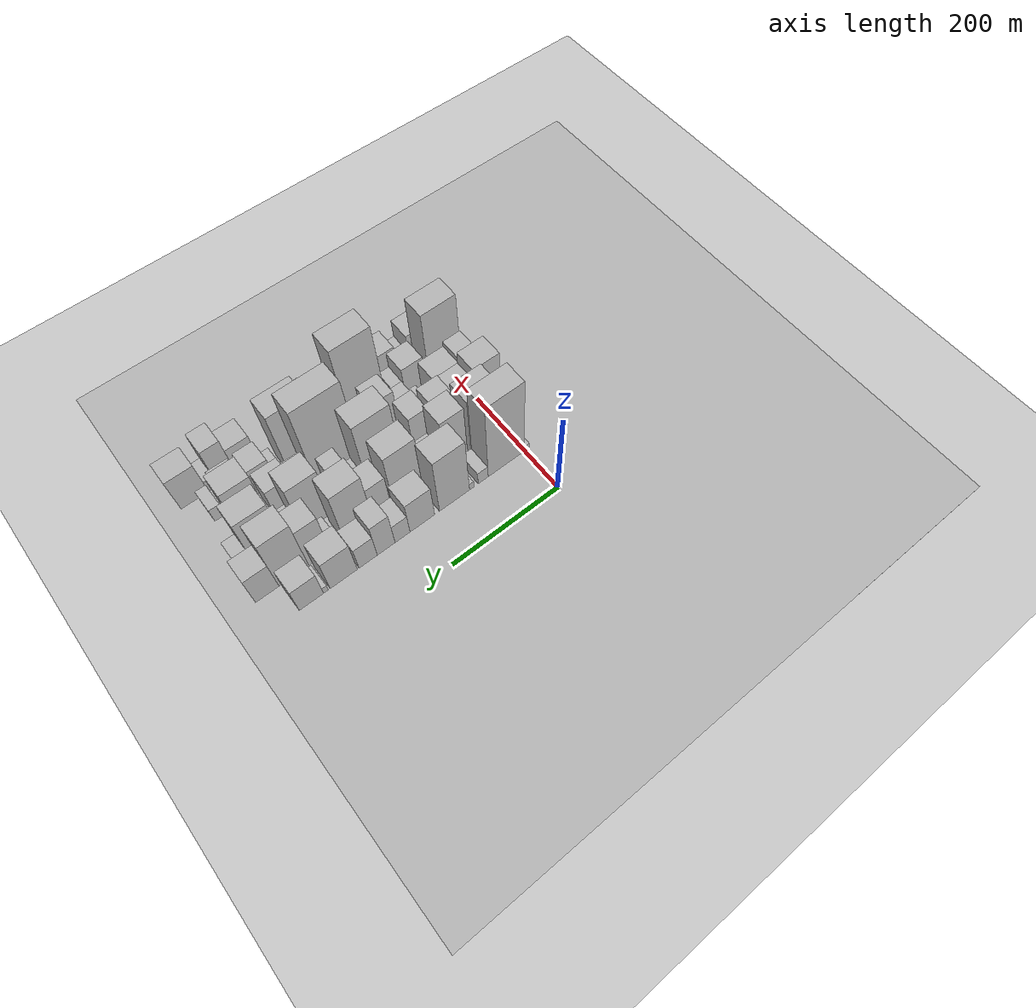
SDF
<sdf version="1.6">
 <world name="default">
  <include><name>ground_plane_1</name><uri>model://HANNAS_ground_plane</uri></include>
  <include>
   <name>ground_plane_2</name>
   <uri>model://HANNAS_ground_plane</uri>
   <pose>100 0 0  0 0 0</pose>
  </include>
  <model name="building_27">
   <static>1</static>
   <pose>100.0000 -5.7224 0 0.000000 0.000000 0.000000</pose>
   <link name="link">
    <pose>0 0 7.50 0 0 0</pose>
    <collision name="collision"><geometry><box><size>40.0000 6.3690 15.0000</size></box></geometry></collision>
    <visual name="visual">
     <cast_shadows>0</cast_shadows>
     <geometry><box><size>40.0000 6.3690 15.0000</size></box></geometry>
     <material>
      <script>
       <uri>model://HANNAS_wall/materials/scripts</uri>
       <uri>model://HANNAS_wall/materials/textures</uri>
       <name>vrc/HANNAS_wall</name>
      </script>
     </material>
    </visual>
   </link>
  </model>
  <model name="building_28">
   <static>1</static>
   <pose>100.0000 36.5928 0 0.000000 0.000000 0.000000</pose>
   <link name="link">
    <pose>0 0 100.50 0 0 0</pose>
    <collision name="collision"><geometry><box><size>40.0000 70.2614 201.0000</size></box></geometry></collision>
    <visual name="visual">
     <cast_shadows>0</cast_shadows>
     <geometry><box><size>40.0000 70.2614 201.0000</size></box></geometry>
     <material>
      <script>
       <uri>model://HANNAS_wall/materials/scripts</uri>
       <uri>model://HANNAS_wall/materials/textures</uri>
       <name>vrc/HANNAS_wall</name>
      </script>
     </material>
    </visual>
   </link>
  </model>
  <model name="building_29">
   <static>1</static>
   <pose>100.0000 81.3332 0 0.000000 0.000000 0.000000</pose>
   <link name="link">
    <pose>0 0 16.50 0 0 0</pose>
    <collision name="collision"><geometry><box><size>40.0000 19.2194 33.0000</size></box></geometry></collision>
    <visual name="visual">
     <cast_shadows>0</cast_shadows>
     <geometry><box><size>40.0000 19.2194 33.0000</size></box></geometry>
     <material>
      <script>
       <uri>model://HANNAS_wall/materials/scripts</uri>
       <uri>model://HANNAS_wall/materials/textures</uri>
       <name>vrc/HANNAS_wall</name>
      </script>
     </material>
    </visual>
   </link>
  </model>
  <model name="building_30">
   <static>1</static>
   <pose>100.0000 103.2187 0 0.000000 0.000000 0.000000</pose>
   <link name="link">
    <pose>0 0 9.00 0 0 0</pose>
    <collision name="collision"><geometry><box><size>40.0000 8.5515 18.0000</size></box></geometry></collision>
    <visual name="visual">
     <cast_shadows>0</cast_shadows>
     <geometry><box><size>40.0000 8.5515 18.0000</size></box></geometry>
     <material>
      <script>
       <uri>model://HANNAS_wall/materials/scripts</uri>
       <uri>model://HANNAS_wall/materials/textures</uri>
       <name>vrc/HANNAS_wall</name>
      </script>
     </material>
    </visual>
   </link>
  </model>
  <model name="building_31">
   <static>1</static>
   <pose>100.0000 135.7217 0 0.000000 0.000000 0.000000</pose>
   <link name="link">
    <pose>0 0 75.00 0 0 0</pose>
    <collision name="collision"><geometry><box><size>40.0000 56.4544 150.0000</size></box></geometry></collision>
    <visual name="visual">
     <cast_shadows>0</cast_shadows>
     <geometry><box><size>40.0000 56.4544 150.0000</size></box></geometry>
     <material>
      <script>
       <uri>model://HANNAS_wall/materials/scripts</uri>
       <uri>model://HANNAS_wall/materials/textures</uri>
       <name>vrc/HANNAS_wall</name>
      </script>
     </material>
    </visual>
   </link>
  </model>
  <model name="building_32">
   <static>1</static>
   <pose>100.0000 195.4311 0 0.000000 0.000000 0.000000</pose>
   <link name="link">
    <pose>0 0 43.50 0 0 0</pose>
    <collision name="collision"><geometry><box><size>40.0000 44.9646 87.0000</size></box></geometry></collision>
    <visual name="visual">
     <cast_shadows>0</cast_shadows>
     <geometry><box><size>40.0000 44.9646 87.0000</size></box></geometry>
     <material>
      <script>
       <uri>model://HANNAS_wall/materials/scripts</uri>
       <uri>model://HANNAS_wall/materials/textures</uri>
       <name>vrc/HANNAS_wall</name>
      </script>
     </material>
    </visual>
   </link>
  </model>
  <model name="building_33">
   <static>1</static>
   <pose>100.0000 231.5103 0 0.000000 0.000000 0.000000</pose>
   <link name="link">
    <pose>0 0 27.00 0 0 0</pose>
    <collision name="collision"><geometry><box><size>40.0000 27.1937 54.0000</size></box></geometry></collision>
    <visual name="visual">
     <cast_shadows>0</cast_shadows>
     <geometry><box><size>40.0000 27.1937 54.0000</size></box></geometry>
     <material>
      <script>
       <uri>model://HANNAS_wall/materials/scripts</uri>
       <uri>model://HANNAS_wall/materials/textures</uri>
       <name>vrc/HANNAS_wall</name>
      </script>
     </material>
    </visual>
   </link>
  </model>
  <model name="building_34">
   <static>1</static>
   <pose>100.0000 260.8159 0 0.000000 0.000000 0.000000</pose>
   <link name="link">
    <pose>0 0 46.50 0 0 0</pose>
    <collision name="collision"><geometry><box><size>40.0000 31.4175 93.0000</size></box></geometry></collision>
    <visual name="visual">
     <cast_shadows>0</cast_shadows>
     <geometry><box><size>40.0000 31.4175 93.0000</size></box></geometry>
     <material>
      <script>
       <uri>model://HANNAS_wall/materials/scripts</uri>
       <uri>model://HANNAS_wall/materials/textures</uri>
       <name>vrc/HANNAS_wall</name>
      </script>
     </material>
    </visual>
   </link>
  </model>
  <model name="building_35">
   <static>1</static>
   <pose>100.0000 292.6859 0 0.000000 0.000000 0.000000</pose>
   <link name="link">
    <pose>0 0 31.50 0 0 0</pose>
    <collision name="collision"><geometry><box><size>40.0000 32.3226 63.0000</size></box></geometry></collision>
    <visual name="visual">
     <cast_shadows>0</cast_shadows>
     <geometry><box><size>40.0000 32.3226 63.0000</size></box></geometry>
     <material>
      <script>
       <uri>model://HANNAS_wall/materials/scripts</uri>
       <uri>model://HANNAS_wall/materials/textures</uri>
       <name>vrc/HANNAS_wall</name>
      </script>
     </material>
    </visual>
   </link>
  </model>
  <model name="building_36">
   <static>1</static>
   <pose>100.0000 335.2974 0 0.000000 0.000000 0.000000</pose>
   <link name="link">
    <pose>0 0 43.50 0 0 0</pose>
    <collision name="collision"><geometry><box><size>40.0000 46.9004 87.0000</size></box></geometry></collision>
    <visual name="visual">
     <cast_shadows>0</cast_shadows>
     <geometry><box><size>40.0000 46.9004 87.0000</size></box></geometry>
     <material>
      <script>
       <uri>model://HANNAS_wall/materials/scripts</uri>
       <uri>model://HANNAS_wall/materials/textures</uri>
       <name>vrc/HANNAS_wall</name>
      </script>
     </material>
    </visual>
   </link>
  </model>
  <model name="building_37">
   <static>1</static>
   <pose>100.0000 365.7102 0 0.000000 0.000000 0.000000</pose>
   <link name="link">
    <pose>0 0 9.00 0 0 0</pose>
    <collision name="collision"><geometry><box><size>40.0000 7.9251 18.0000</size></box></geometry></collision>
    <visual name="visual">
     <cast_shadows>0</cast_shadows>
     <geometry><box><size>40.0000 7.9251 18.0000</size></box></geometry>
     <material>
      <script>
       <uri>model://HANNAS_wall/materials/scripts</uri>
       <uri>model://HANNAS_wall/materials/textures</uri>
       <name>vrc/HANNAS_wall</name>
      </script>
     </material>
    </visual>
   </link>
  </model>
  <model name="building_38">
   <static>1</static>
   <pose>100.0000 390.2673 0 0.000000 0.000000 0.000000</pose>
   <link name="link">
    <pose>0 0 34.50 0 0 0</pose>
    <collision name="collision"><geometry><box><size>40.0000 41.1891 69.0000</size></box></geometry></collision>
    <visual name="visual">
     <cast_shadows>0</cast_shadows>
     <geometry><box><size>40.0000 41.1891 69.0000</size></box></geometry>
     <material>
      <script>
       <uri>model://HANNAS_wall/materials/scripts</uri>
       <uri>model://HANNAS_wall/materials/textures</uri>
       <name>vrc/HANNAS_wall</name>
      </script>
     </material>
    </visual>
   </link>
  </model>
  <model name="building_74">
   <static>1</static>
   <pose>149.0000 -0.8128 0 0.000000 0.000000 0.000000</pose>
   <link name="link">
    <pose>0 0 22.50 0 0 0</pose>
    <collision name="collision"><geometry><box><size>40.0000 24.3933 45.0000</size></box></geometry></collision>
    <visual name="visual">
     <cast_shadows>0</cast_shadows>
     <geometry><box><size>40.0000 24.3933 45.0000</size></box></geometry>
     <material>
      <script>
       <uri>model://HANNAS_wall/materials/scripts</uri>
       <uri>model://HANNAS_wall/materials/textures</uri>
       <name>vrc/HANNAS_wall</name>
      </script>
     </material>
    </visual>
   </link>
  </model>
  <model name="building_75">
   <static>1</static>
   <pose>149.0000 39.4271 0 0.000000 0.000000 0.000000</pose>
   <link name="link">
    <pose>0 0 75.00 0 0 0</pose>
    <collision name="collision"><geometry><box><size>40.0000 56.0865 150.0000</size></box></geometry></collision>
    <visual name="visual">
     <cast_shadows>0</cast_shadows>
     <geometry><box><size>40.0000 56.0865 150.0000</size></box></geometry>
     <material>
      <script>
       <uri>model://HANNAS_wall/materials/scripts</uri>
       <uri>model://HANNAS_wall/materials/textures</uri>
       <name>vrc/HANNAS_wall</name>
      </script>
     </material>
    </visual>
   </link>
  </model>
  <model name="building_76">
   <static>1</static>
   <pose>149.0000 94.7992 0 0.000000 0.000000 0.000000</pose>
   <link name="link">
    <pose>0 0 70.50 0 0 0</pose>
    <collision name="collision"><geometry><box><size>40.0000 42.6575 141.0000</size></box></geometry></collision>
    <visual name="visual">
     <cast_shadows>0</cast_shadows>
     <geometry><box><size>40.0000 42.6575 141.0000</size></box></geometry>
     <material>
      <script>
       <uri>model://HANNAS_wall/materials/scripts</uri>
       <uri>model://HANNAS_wall/materials/textures</uri>
       <name>vrc/HANNAS_wall</name>
      </script>
     </material>
    </visual>
   </link>
  </model>
  <model name="building_77">
   <static>1</static>
   <pose>149.0000 132.2302 0 0.000000 0.000000 0.000000</pose>
   <link name="link">
    <pose>0 0 31.50 0 0 0</pose>
    <collision name="collision"><geometry><box><size>40.0000 32.2046 63.0000</size></box></geometry></collision>
    <visual name="visual">
     <cast_shadows>0</cast_shadows>
     <geometry><box><size>40.0000 32.2046 63.0000</size></box></geometry>
     <material>
      <script>
       <uri>model://HANNAS_wall/materials/scripts</uri>
       <uri>model://HANNAS_wall/materials/textures</uri>
       <name>vrc/HANNAS_wall</name>
      </script>
     </material>
    </visual>
   </link>
  </model>
  <model name="building_78">
   <static>1</static>
   <pose>149.0000 153.1834 0 0.000000 0.000000 0.000000</pose>
   <link name="link">
    <pose>0 0 10.50 0 0 0</pose>
    <collision name="collision"><geometry><box><size>40.0000 9.7017 21.0000</size></box></geometry></collision>
    <visual name="visual">
     <cast_shadows>0</cast_shadows>
     <geometry><box><size>40.0000 9.7017 21.0000</size></box></geometry>
     <material>
      <script>
       <uri>model://HANNAS_wall/materials/scripts</uri>
       <uri>model://HANNAS_wall/materials/textures</uri>
       <name>vrc/HANNAS_wall</name>
      </script>
     </material>
    </visual>
   </link>
  </model>
  <model name="building_79">
   <static>1</static>
   <pose>149.0000 185.0868 0 0.000000 0.000000 0.000000</pose>
   <link name="link">
    <pose>0 0 73.50 0 0 0</pose>
    <collision name="collision"><geometry><box><size>40.0000 54.1052 147.0000</size></box></geometry></collision>
    <visual name="visual">
     <cast_shadows>0</cast_shadows>
     <geometry><box><size>40.0000 54.1052 147.0000</size></box></geometry>
     <material>
      <script>
       <uri>model://HANNAS_wall/materials/scripts</uri>
       <uri>model://HANNAS_wall/materials/textures</uri>
       <name>vrc/HANNAS_wall</name>
      </script>
     </material>
    </visual>
   </link>
  </model>
  <model name="building_80">
   <static>1</static>
   <pose>149.0000 232.9649 0 0.000000 0.000000 0.000000</pose>
   <link name="link">
    <pose>0 0 49.50 0 0 0</pose>
    <collision name="collision"><geometry><box><size>40.0000 33.6509 99.0000</size></box></geometry></collision>
    <visual name="visual">
     <cast_shadows>0</cast_shadows>
     <geometry><box><size>40.0000 33.6509 99.0000</size></box></geometry>
     <material>
      <script>
       <uri>model://HANNAS_wall/materials/scripts</uri>
       <uri>model://HANNAS_wall/materials/textures</uri>
       <name>vrc/HANNAS_wall</name>
      </script>
     </material>
    </visual>
   </link>
  </model>
  <model name="building_81">
   <static>1</static>
   <pose>149.0000 275.7287 0 0.000000 0.000000 0.000000</pose>
   <link name="link">
    <pose>0 0 70.50 0 0 0</pose>
    <collision name="collision"><geometry><box><size>40.0000 51.8768 141.0000</size></box></geometry></collision>
    <visual name="visual">
     <cast_shadows>0</cast_shadows>
     <geometry><box><size>40.0000 51.8768 141.0000</size></box></geometry>
     <material>
      <script>
       <uri>model://HANNAS_wall/materials/scripts</uri>
       <uri>model://HANNAS_wall/materials/textures</uri>
       <name>vrc/HANNAS_wall</name>
      </script>
     </material>
    </visual>
   </link>
  </model>
  <model name="building_82">
   <static>1</static>
   <pose>149.0000 317.8716 0 0.000000 0.000000 0.000000</pose>
   <link name="link">
    <pose>0 0 15.00 0 0 0</pose>
    <collision name="collision"><geometry><box><size>40.0000 16.4090 30.0000</size></box></geometry></collision>
    <visual name="visual">
     <cast_shadows>0</cast_shadows>
     <geometry><box><size>40.0000 16.4090 30.0000</size></box></geometry>
     <material>
      <script>
       <uri>model://HANNAS_wall/materials/scripts</uri>
       <uri>model://HANNAS_wall/materials/textures</uri>
       <name>vrc/HANNAS_wall</name>
      </script>
     </material>
    </visual>
   </link>
  </model>
  <model name="building_83">
   <static>1</static>
   <pose>149.0000 344.7126 0 0.000000 0.000000 0.000000</pose>
   <link name="link">
    <pose>0 0 57.00 0 0 0</pose>
    <collision name="collision"><geometry><box><size>40.0000 37.2731 114.0000</size></box></geometry></collision>
    <visual name="visual">
     <cast_shadows>0</cast_shadows>
     <geometry><box><size>40.0000 37.2731 114.0000</size></box></geometry>
     <material>
      <script>
       <uri>model://HANNAS_wall/materials/scripts</uri>
       <uri>model://HANNAS_wall/materials/textures</uri>
       <name>vrc/HANNAS_wall</name>
      </script>
     </material>
    </visual>
   </link>
  </model>
  <model name="building_84">
   <static>1</static>
   <pose>149.0000 388.6370 0 0.000000 0.000000 0.000000</pose>
   <link name="link">
    <pose>0 0 70.50 0 0 0</pose>
    <collision name="collision"><geometry><box><size>40.0000 50.5756 141.0000</size></box></geometry></collision>
    <visual name="visual">
     <cast_shadows>0</cast_shadows>
     <geometry><box><size>40.0000 50.5756 141.0000</size></box></geometry>
     <material>
      <script>
       <uri>model://HANNAS_wall/materials/scripts</uri>
       <uri>model://HANNAS_wall/materials/textures</uri>
       <name>vrc/HANNAS_wall</name>
      </script>
     </material>
    </visual>
   </link>
  </model>
  <model name="building_85">
   <static>1</static>
   <pose>149.0000 433.4695 0 0.000000 0.000000 0.000000</pose>
   <link name="link">
    <pose>0 0 39.00 0 0 0</pose>
    <collision name="collision"><geometry><box><size>40.0000 39.0894 78.0000</size></box></geometry></collision>
    <visual name="visual">
     <cast_shadows>0</cast_shadows>
     <geometry><box><size>40.0000 39.0894 78.0000</size></box></geometry>
     <material>
      <script>
       <uri>model://HANNAS_wall/materials/scripts</uri>
       <uri>model://HANNAS_wall/materials/textures</uri>
       <name>vrc/HANNAS_wall</name>
      </script>
     </material>
    </visual>
   </link>
  </model>
  <model name="building_119">
   <static>1</static>
   <pose>198.0000 -5.2504 0 0.000000 0.000000 0.000000</pose>
   <link name="link">
    <pose>0 0 64.50 0 0 0</pose>
    <collision name="collision"><geometry><box><size>40.0000 49.3095 129.0000</size></box></geometry></collision>
    <visual name="visual">
     <cast_shadows>0</cast_shadows>
     <geometry><box><size>40.0000 49.3095 129.0000</size></box></geometry>
     <material>
      <script>
       <uri>model://HANNAS_wall/materials/scripts</uri>
       <uri>model://HANNAS_wall/materials/textures</uri>
       <name>vrc/HANNAS_wall</name>
      </script>
     </material>
    </visual>
   </link>
  </model>
  <model name="building_120">
   <static>1</static>
   <pose>198.0000 38.4771 0 0.000000 0.000000 0.000000</pose>
   <link name="link">
    <pose>0 0 51.00 0 0 0</pose>
    <collision name="collision"><geometry><box><size>40.0000 38.1455 102.0000</size></box></geometry></collision>
    <visual name="visual">
     <cast_shadows>0</cast_shadows>
     <geometry><box><size>40.0000 38.1455 102.0000</size></box></geometry>
     <material>
      <script>
       <uri>model://HANNAS_wall/materials/scripts</uri>
       <uri>model://HANNAS_wall/materials/textures</uri>
       <name>vrc/HANNAS_wall</name>
      </script>
     </material>
    </visual>
   </link>
  </model>
  <model name="building_121">
   <static>1</static>
   <pose>198.0000 76.6604 0 0.000000 0.000000 0.000000</pose>
   <link name="link">
    <pose>0 0 52.50 0 0 0</pose>
    <collision name="collision"><geometry><box><size>40.0000 38.2211 105.0000</size></box></geometry></collision>
    <visual name="visual">
     <cast_shadows>0</cast_shadows>
     <geometry><box><size>40.0000 38.2211 105.0000</size></box></geometry>
     <material>
      <script>
       <uri>model://HANNAS_wall/materials/scripts</uri>
       <uri>model://HANNAS_wall/materials/textures</uri>
       <name>vrc/HANNAS_wall</name>
      </script>
     </material>
    </visual>
   </link>
  </model>
  <model name="building_122">
   <static>1</static>
   <pose>198.0000 100.1140 0 0.000000 0.000000 0.000000</pose>
   <link name="link">
    <pose>0 0 10.50 0 0 0</pose>
    <collision name="collision"><geometry><box><size>40.0000 8.6861 21.0000</size></box></geometry></collision>
    <visual name="visual">
     <cast_shadows>0</cast_shadows>
     <geometry><box><size>40.0000 8.6861 21.0000</size></box></geometry>
     <material>
      <script>
       <uri>model://HANNAS_wall/materials/scripts</uri>
       <uri>model://HANNAS_wall/materials/textures</uri>
       <name>vrc/HANNAS_wall</name>
      </script>
     </material>
    </visual>
   </link>
  </model>
  <model name="building_123">
   <static>1</static>
   <pose>198.0000 121.4456 0 0.000000 0.000000 0.000000</pose>
   <link name="link">
    <pose>0 0 55.50 0 0 0</pose>
    <collision name="collision"><geometry><box><size>40.0000 33.9771 111.0000</size></box></geometry></collision>
    <visual name="visual">
     <cast_shadows>0</cast_shadows>
     <geometry><box><size>40.0000 33.9771 111.0000</size></box></geometry>
     <material>
      <script>
       <uri>model://HANNAS_wall/materials/scripts</uri>
       <uri>model://HANNAS_wall/materials/textures</uri>
       <name>vrc/HANNAS_wall</name>
      </script>
     </material>
    </visual>
   </link>
  </model>
  <model name="building_124">
   <static>1</static>
   <pose>198.0000 151.0442 0 0.000000 0.000000 0.000000</pose>
   <link name="link">
    <pose>0 0 13.50 0 0 0</pose>
    <collision name="collision"><geometry><box><size>40.0000 11.2201 27.0000</size></box></geometry></collision>
    <visual name="visual">
     <cast_shadows>0</cast_shadows>
     <geometry><box><size>40.0000 11.2201 27.0000</size></box></geometry>
     <material>
      <script>
       <uri>model://HANNAS_wall/materials/scripts</uri>
       <uri>model://HANNAS_wall/materials/textures</uri>
       <name>vrc/HANNAS_wall</name>
      </script>
     </material>
    </visual>
   </link>
  </model>
  <model name="building_125">
   <static>1</static>
   <pose>198.0000 193.1384 0 0.000000 0.000000 0.000000</pose>
   <link name="link">
    <pose>0 0 90.00 0 0 0</pose>
    <collision name="collision"><geometry><box><size>40.0000 62.9683 180.0000</size></box></geometry></collision>
    <visual name="visual">
     <cast_shadows>0</cast_shadows>
     <geometry><box><size>40.0000 62.9683 180.0000</size></box></geometry>
     <material>
      <script>
       <uri>model://HANNAS_wall/materials/scripts</uri>
       <uri>model://HANNAS_wall/materials/textures</uri>
       <name>vrc/HANNAS_wall</name>
      </script>
     </material>
    </visual>
   </link>
  </model>
  <model name="building_126">
   <static>1</static>
   <pose>198.0000 234.9714 0 0.000000 0.000000 0.000000</pose>
   <link name="link">
    <pose>0 0 19.50 0 0 0</pose>
    <collision name="collision"><geometry><box><size>40.0000 20.6977 39.0000</size></box></geometry></collision>
    <visual name="visual">
     <cast_shadows>0</cast_shadows>
     <geometry><box><size>40.0000 20.6977 39.0000</size></box></geometry>
     <material>
      <script>
       <uri>model://HANNAS_wall/materials/scripts</uri>
       <uri>model://HANNAS_wall/materials/textures</uri>
       <name>vrc/HANNAS_wall</name>
      </script>
     </material>
    </visual>
   </link>
  </model>
  <model name="building_127">
   <static>1</static>
   <pose>198.0000 259.9222 0 0.000000 0.000000 0.000000</pose>
   <link name="link">
    <pose>0 0 48.00 0 0 0</pose>
    <collision name="collision"><geometry><box><size>40.0000 29.2037 96.0000</size></box></geometry></collision>
    <visual name="visual">
     <cast_shadows>0</cast_shadows>
     <geometry><box><size>40.0000 29.2037 96.0000</size></box></geometry>
     <material>
      <script>
       <uri>model://HANNAS_wall/materials/scripts</uri>
       <uri>model://HANNAS_wall/materials/textures</uri>
       <name>vrc/HANNAS_wall</name>
      </script>
     </material>
    </visual>
   </link>
  </model>
  <model name="building_128">
   <static>1</static>
   <pose>198.0000 282.4405 0 0.000000 0.000000 0.000000</pose>
   <link name="link">
    <pose>0 0 15.00 0 0 0</pose>
    <collision name="collision"><geometry><box><size>40.0000 15.8329 30.0000</size></box></geometry></collision>
    <visual name="visual">
     <cast_shadows>0</cast_shadows>
     <geometry><box><size>40.0000 15.8329 30.0000</size></box></geometry>
     <material>
      <script>
       <uri>model://HANNAS_wall/materials/scripts</uri>
       <uri>model://HANNAS_wall/materials/textures</uri>
       <name>vrc/HANNAS_wall</name>
      </script>
     </material>
    </visual>
   </link>
  </model>
  <model name="building_129">
   <static>1</static>
   <pose>198.0000 316.2164 0 0.000000 0.000000 0.000000</pose>
   <link name="link">
    <pose>0 0 67.50 0 0 0</pose>
    <collision name="collision"><geometry><box><size>40.0000 51.7189 135.0000</size></box></geometry></collision>
    <visual name="visual">
     <cast_shadows>0</cast_shadows>
     <geometry><box><size>40.0000 51.7189 135.0000</size></box></geometry>
     <material>
      <script>
       <uri>model://HANNAS_wall/materials/scripts</uri>
       <uri>model://HANNAS_wall/materials/textures</uri>
       <name>vrc/HANNAS_wall</name>
      </script>
     </material>
    </visual>
   </link>
  </model>
  <model name="building_130">
   <static>1</static>
   <pose>198.0000 351.0483 0 0.000000 0.000000 0.000000</pose>
   <link name="link">
    <pose>0 0 16.50 0 0 0</pose>
    <collision name="collision"><geometry><box><size>40.0000 17.9449 33.0000</size></box></geometry></collision>
    <visual name="visual">
     <cast_shadows>0</cast_shadows>
     <geometry><box><size>40.0000 17.9449 33.0000</size></box></geometry>
     <material>
      <script>
       <uri>model://HANNAS_wall/materials/scripts</uri>
       <uri>model://HANNAS_wall/materials/textures</uri>
       <name>vrc/HANNAS_wall</name>
      </script>
     </material>
    </visual>
   </link>
  </model>
  <model name="building_131">
   <static>1</static>
   <pose>198.0000 396.7168 0 0.000000 0.000000 0.000000</pose>
   <link name="link">
    <pose>0 0 67.50 0 0 0</pose>
    <collision name="collision"><geometry><box><size>40.0000 53.3920 135.0000</size></box></geometry></collision>
    <visual name="visual">
     <cast_shadows>0</cast_shadows>
     <geometry><box><size>40.0000 53.3920 135.0000</size></box></geometry>
     <material>
      <script>
       <uri>model://HANNAS_wall/materials/scripts</uri>
       <uri>model://HANNAS_wall/materials/textures</uri>
       <name>vrc/HANNAS_wall</name>
      </script>
     </material>
    </visual>
   </link>
  </model>
  <model name="building_132">
   <static>1</static>
   <pose>198.0000 434.5414 0 0.000000 0.000000 0.000000</pose>
   <link name="link">
    <pose>0 0 21.00 0 0 0</pose>
    <collision name="collision"><geometry><box><size>40.0000 22.2572 42.0000</size></box></geometry></collision>
    <visual name="visual">
     <cast_shadows>0</cast_shadows>
     <geometry><box><size>40.0000 22.2572 42.0000</size></box></geometry>
     <material>
      <script>
       <uri>model://HANNAS_wall/materials/scripts</uri>
       <uri>model://HANNAS_wall/materials/textures</uri>
       <name>vrc/HANNAS_wall</name>
      </script>
     </material>
    </visual>
   </link>
  </model>
  <model name="building_170">
   <static>1</static>
   <pose>247.0000 -4.9164 0 0.000000 0.000000 0.000000</pose>
   <link name="link">
    <pose>0 0 48.00 0 0 0</pose>
    <collision name="collision"><geometry><box><size>40.0000 33.4849 96.0000</size></box></geometry></collision>
    <visual name="visual">
     <cast_shadows>0</cast_shadows>
     <geometry><box><size>40.0000 33.4849 96.0000</size></box></geometry>
     <material>
      <script>
       <uri>model://HANNAS_wall/materials/scripts</uri>
       <uri>model://HANNAS_wall/materials/textures</uri>
       <name>vrc/HANNAS_wall</name>
      </script>
     </material>
    </visual>
   </link>
  </model>
  <model name="building_171">
   <static>1</static>
   <pose>247.0000 36.1118 0 0.000000 0.000000 0.000000</pose>
   <link name="link">
    <pose>0 0 42.00 0 0 0</pose>
    <collision name="collision"><geometry><box><size>40.0000 48.5715 84.0000</size></box></geometry></collision>
    <visual name="visual">
     <cast_shadows>0</cast_shadows>
     <geometry><box><size>40.0000 48.5715 84.0000</size></box></geometry>
     <material>
      <script>
       <uri>model://HANNAS_wall/materials/scripts</uri>
       <uri>model://HANNAS_wall/materials/textures</uri>
       <name>vrc/HANNAS_wall</name>
      </script>
     </material>
    </visual>
   </link>
  </model>
  <model name="building_172">
   <static>1</static>
   <pose>247.0000 78.2502 0 0.000000 0.000000 0.000000</pose>
   <link name="link">
    <pose>0 0 15.00 0 0 0</pose>
    <collision name="collision"><geometry><box><size>40.0000 15.7053 30.0000</size></box></geometry></collision>
    <visual name="visual">
     <cast_shadows>0</cast_shadows>
     <geometry><box><size>40.0000 15.7053 30.0000</size></box></geometry>
     <material>
      <script>
       <uri>model://HANNAS_wall/materials/scripts</uri>
       <uri>model://HANNAS_wall/materials/textures</uri>
       <name>vrc/HANNAS_wall</name>
      </script>
     </material>
    </visual>
   </link>
  </model>
  <model name="building_173">
   <static>1</static>
   <pose>247.0000 111.3381 0 0.000000 0.000000 0.000000</pose>
   <link name="link">
    <pose>0 0 31.50 0 0 0</pose>
    <collision name="collision"><geometry><box><size>40.0000 36.4706 63.0000</size></box></geometry></collision>
    <visual name="visual">
     <cast_shadows>0</cast_shadows>
     <geometry><box><size>40.0000 36.4706 63.0000</size></box></geometry>
     <material>
      <script>
       <uri>model://HANNAS_wall/materials/scripts</uri>
       <uri>model://HANNAS_wall/materials/textures</uri>
       <name>vrc/HANNAS_wall</name>
      </script>
     </material>
    </visual>
   </link>
  </model>
  <model name="building_174">
   <static>1</static>
   <pose>247.0000 148.9045 0 0.000000 0.000000 0.000000</pose>
   <link name="link">
    <pose>0 0 60.00 0 0 0</pose>
    <collision name="collision"><geometry><box><size>40.0000 38.6622 120.0000</size></box></geometry></collision>
    <visual name="visual">
     <cast_shadows>0</cast_shadows>
     <geometry><box><size>40.0000 38.6622 120.0000</size></box></geometry>
     <material>
      <script>
       <uri>model://HANNAS_wall/materials/scripts</uri>
       <uri>model://HANNAS_wall/materials/textures</uri>
       <name>vrc/HANNAS_wall</name>
      </script>
     </material>
    </visual>
   </link>
  </model>
  <model name="building_175">
   <static>1</static>
   <pose>247.0000 186.9844 0 0.000000 0.000000 0.000000</pose>
   <link name="link">
    <pose>0 0 49.50 0 0 0</pose>
    <collision name="collision"><geometry><box><size>40.0000 31.4977 99.0000</size></box></geometry></collision>
    <visual name="visual">
     <cast_shadows>0</cast_shadows>
     <geometry><box><size>40.0000 31.4977 99.0000</size></box></geometry>
     <material>
      <script>
       <uri>model://HANNAS_wall/materials/scripts</uri>
       <uri>model://HANNAS_wall/materials/textures</uri>
       <name>vrc/HANNAS_wall</name>
      </script>
     </material>
    </visual>
   </link>
  </model>
  <model name="building_176">
   <static>1</static>
   <pose>247.0000 243.6855 0 0.000000 0.000000 0.000000</pose>
   <link name="link">
    <pose>0 0 109.50 0 0 0</pose>
    <collision name="collision"><geometry><box><size>40.0000 81.9045 219.0000</size></box></geometry></collision>
    <visual name="visual">
     <cast_shadows>0</cast_shadows>
     <geometry><box><size>40.0000 81.9045 219.0000</size></box></geometry>
     <material>
      <script>
       <uri>model://HANNAS_wall/materials/scripts</uri>
       <uri>model://HANNAS_wall/materials/textures</uri>
       <name>vrc/HANNAS_wall</name>
      </script>
     </material>
    </visual>
   </link>
  </model>
  <model name="building_177">
   <static>1</static>
   <pose>247.0000 299.8786 0 0.000000 0.000000 0.000000</pose>
   <link name="link">
    <pose>0 0 27.00 0 0 0</pose>
    <collision name="collision"><geometry><box><size>40.0000 30.4816 54.0000</size></box></geometry></collision>
    <visual name="visual">
     <cast_shadows>0</cast_shadows>
     <geometry><box><size>40.0000 30.4816 54.0000</size></box></geometry>
     <material>
      <script>
       <uri>model://HANNAS_wall/materials/scripts</uri>
       <uri>model://HANNAS_wall/materials/textures</uri>
       <name>vrc/HANNAS_wall</name>
      </script>
     </material>
    </visual>
   </link>
  </model>
  <model name="building_178">
   <static>1</static>
   <pose>247.0000 337.2124 0 0.000000 0.000000 0.000000</pose>
   <link name="link">
    <pose>0 0 37.50 0 0 0</pose>
    <collision name="collision"><geometry><box><size>40.0000 44.1861 75.0000</size></box></geometry></collision>
    <visual name="visual">
     <cast_shadows>0</cast_shadows>
     <geometry><box><size>40.0000 44.1861 75.0000</size></box></geometry>
     <material>
      <script>
       <uri>model://HANNAS_wall/materials/scripts</uri>
       <uri>model://HANNAS_wall/materials/textures</uri>
       <name>vrc/HANNAS_wall</name>
      </script>
     </material>
    </visual>
   </link>
  </model>
  <model name="building_179">
   <static>1</static>
   <pose>247.0000 390.4517 0 0.000000 0.000000 0.000000</pose>
   <link name="link">
    <pose>0 0 69.00 0 0 0</pose>
    <collision name="collision"><geometry><box><size>40.0000 48.2925 138.0000</size></box></geometry></collision>
    <visual name="visual">
     <cast_shadows>0</cast_shadows>
     <geometry><box><size>40.0000 48.2925 138.0000</size></box></geometry>
     <material>
      <script>
       <uri>model://HANNAS_wall/materials/scripts</uri>
       <uri>model://HANNAS_wall/materials/textures</uri>
       <name>vrc/HANNAS_wall</name>
      </script>
     </material>
    </visual>
   </link>
  </model>
  <model name="building_216">
   <static>1</static>
   <pose>296.0000 6.8372 0 0.000000 0.000000 0.000000</pose>
   <link name="link">
    <pose>0 0 87.00 0 0 0</pose>
    <collision name="collision"><geometry><box><size>40.0000 64.0710 174.0000</size></box></geometry></collision>
    <visual name="visual">
     <cast_shadows>0</cast_shadows>
     <geometry><box><size>40.0000 64.0710 174.0000</size></box></geometry>
     <material>
      <script>
       <uri>model://HANNAS_wall/materials/scripts</uri>
       <uri>model://HANNAS_wall/materials/textures</uri>
       <name>vrc/HANNAS_wall</name>
      </script>
     </material>
    </visual>
   </link>
  </model>
  <model name="building_217">
   <static>1</static>
   <pose>296.0000 65.9209 0 0.000000 0.000000 0.000000</pose>
   <link name="link">
    <pose>0 0 37.50 0 0 0</pose>
    <collision name="collision"><geometry><box><size>40.0000 40.0963 75.0000</size></box></geometry></collision>
    <visual name="visual">
     <cast_shadows>0</cast_shadows>
     <geometry><box><size>40.0000 40.0963 75.0000</size></box></geometry>
     <material>
      <script>
       <uri>model://HANNAS_wall/materials/scripts</uri>
       <uri>model://HANNAS_wall/materials/textures</uri>
       <name>vrc/HANNAS_wall</name>
      </script>
     </material>
    </visual>
   </link>
  </model>
  <model name="building_218">
   <static>1</static>
   <pose>296.0000 96.1782 0 0.000000 0.000000 0.000000</pose>
   <link name="link">
    <pose>0 0 19.50 0 0 0</pose>
    <collision name="collision"><geometry><box><size>40.0000 20.4184 39.0000</size></box></geometry></collision>
    <visual name="visual">
     <cast_shadows>0</cast_shadows>
     <geometry><box><size>40.0000 20.4184 39.0000</size></box></geometry>
     <material>
      <script>
       <uri>model://HANNAS_wall/materials/scripts</uri>
       <uri>model://HANNAS_wall/materials/textures</uri>
       <name>vrc/HANNAS_wall</name>
      </script>
     </material>
    </visual>
   </link>
  </model>
  <model name="building_219">
   <static>1</static>
   <pose>296.0000 111.6264 0 0.000000 0.000000 0.000000</pose>
   <link name="link">
    <pose>0 0 10.50 0 0 0</pose>
    <collision name="collision"><geometry><box><size>40.0000 10.4780 21.0000</size></box></geometry></collision>
    <visual name="visual">
     <cast_shadows>0</cast_shadows>
     <geometry><box><size>40.0000 10.4780 21.0000</size></box></geometry>
     <material>
      <script>
       <uri>model://HANNAS_wall/materials/scripts</uri>
       <uri>model://HANNAS_wall/materials/textures</uri>
       <name>vrc/HANNAS_wall</name>
      </script>
     </material>
    </visual>
   </link>
  </model>
  <model name="building_220">
   <static>1</static>
   <pose>296.0000 154.4420 0 0.000000 0.000000 0.000000</pose>
   <link name="link">
    <pose>0 0 109.50 0 0 0</pose>
    <collision name="collision"><geometry><box><size>40.0000 69.1531 219.0000</size></box></geometry></collision>
    <visual name="visual">
     <cast_shadows>0</cast_shadows>
     <geometry><box><size>40.0000 69.1531 219.0000</size></box></geometry>
     <material>
      <script>
       <uri>model://HANNAS_wall/materials/scripts</uri>
       <uri>model://HANNAS_wall/materials/textures</uri>
       <name>vrc/HANNAS_wall</name>
      </script>
     </material>
    </visual>
   </link>
  </model>
  <model name="building_221">
   <static>1</static>
   <pose>296.0000 211.5103 0 0.000000 0.000000 0.000000</pose>
   <link name="link">
    <pose>0 0 55.50 0 0 0</pose>
    <collision name="collision"><geometry><box><size>40.0000 38.9835 111.0000</size></box></geometry></collision>
    <visual name="visual">
     <cast_shadows>0</cast_shadows>
     <geometry><box><size>40.0000 38.9835 111.0000</size></box></geometry>
     <material>
      <script>
       <uri>model://HANNAS_wall/materials/scripts</uri>
       <uri>model://HANNAS_wall/materials/textures</uri>
       <name>vrc/HANNAS_wall</name>
      </script>
     </material>
    </visual>
   </link>
  </model>
  <model name="building_222">
   <static>1</static>
   <pose>296.0000 235.7523 0 0.000000 0.000000 0.000000</pose>
   <link name="link">
    <pose>0 0 10.50 0 0 0</pose>
    <collision name="collision"><geometry><box><size>40.0000 9.5006 21.0000</size></box></geometry></collision>
    <visual name="visual">
     <cast_shadows>0</cast_shadows>
     <geometry><box><size>40.0000 9.5006 21.0000</size></box></geometry>
     <material>
      <script>
       <uri>model://HANNAS_wall/materials/scripts</uri>
       <uri>model://HANNAS_wall/materials/textures</uri>
       <name>vrc/HANNAS_wall</name>
      </script>
     </material>
    </visual>
   </link>
  </model>
  <model name="building_223">
   <static>1</static>
   <pose>296.0000 272.5410 0 0.000000 0.000000 0.000000</pose>
   <link name="link">
    <pose>0 0 81.00 0 0 0</pose>
    <collision name="collision"><geometry><box><size>40.0000 64.0766 162.0000</size></box></geometry></collision>
    <visual name="visual">
     <cast_shadows>0</cast_shadows>
     <geometry><box><size>40.0000 64.0766 162.0000</size></box></geometry>
     <material>
      <script>
       <uri>model://HANNAS_wall/materials/scripts</uri>
       <uri>model://HANNAS_wall/materials/textures</uri>
       <name>vrc/HANNAS_wall</name>
      </script>
     </material>
    </visual>
   </link>
  </model>
  <model name="building_224">
   <static>1</static>
   <pose>296.0000 318.8262 0 0.000000 0.000000 0.000000</pose>
   <link name="link">
    <pose>0 0 15.00 0 0 0</pose>
    <collision name="collision"><geometry><box><size>40.0000 16.4939 30.0000</size></box></geometry></collision>
    <visual name="visual">
     <cast_shadows>0</cast_shadows>
     <geometry><box><size>40.0000 16.4939 30.0000</size></box></geometry>
     <material>
      <script>
       <uri>model://HANNAS_wall/materials/scripts</uri>
       <uri>model://HANNAS_wall/materials/textures</uri>
       <name>vrc/HANNAS_wall</name>
      </script>
     </material>
    </visual>
   </link>
  </model>
  <model name="building_225">
   <static>1</static>
   <pose>296.0000 344.4706 0 0.000000 0.000000 0.000000</pose>
   <link name="link">
    <pose>0 0 34.50 0 0 0</pose>
    <collision name="collision"><geometry><box><size>40.0000 34.7948 69.0000</size></box></geometry></collision>
    <visual name="visual">
     <cast_shadows>0</cast_shadows>
     <geometry><box><size>40.0000 34.7948 69.0000</size></box></geometry>
     <material>
      <script>
       <uri>model://HANNAS_wall/materials/scripts</uri>
       <uri>model://HANNAS_wall/materials/textures</uri>
       <name>vrc/HANNAS_wall</name>
      </script>
     </material>
    </visual>
   </link>
  </model>
  <model name="building_226">
   <static>1</static>
   <pose>296.0000 388.4300 0 0.000000 0.000000 0.000000</pose>
   <link name="link">
    <pose>0 0 33.00 0 0 0</pose>
    <collision name="collision"><geometry><box><size>40.0000 37.1240 66.0000</size></box></geometry></collision>
    <visual name="visual">
     <cast_shadows>0</cast_shadows>
     <geometry><box><size>40.0000 37.1240 66.0000</size></box></geometry>
     <material>
      <script>
       <uri>model://HANNAS_wall/materials/scripts</uri>
       <uri>model://HANNAS_wall/materials/textures</uri>
       <name>vrc/HANNAS_wall</name>
      </script>
     </material>
    </visual>
   </link>
  </model>
  <model name="building_227">
   <static>1</static>
   <pose>296.0000 425.1278 0 0.000000 0.000000 0.000000</pose>
   <link name="link">
    <pose>0 0 18.00 0 0 0</pose>
    <collision name="collision"><geometry><box><size>40.0000 18.2717 36.0000</size></box></geometry></collision>
    <visual name="visual">
     <cast_shadows>0</cast_shadows>
     <geometry><box><size>40.0000 18.2717 36.0000</size></box></geometry>
     <material>
      <script>
       <uri>model://HANNAS_wall/materials/scripts</uri>
       <uri>model://HANNAS_wall/materials/textures</uri>
       <name>vrc/HANNAS_wall</name>
      </script>
     </material>
    </visual>
   </link>
  </model>
  <model name="building_267">
   <static>1</static>
   <pose>345.0000 24.6200 0 0.000000 0.000000 0.000000</pose>
   <link name="link">
    <pose>0 0 36.00 0 0 0</pose>
    <collision name="collision"><geometry><box><size>40.0000 36.4842 72.0000</size></box></geometry></collision>
    <visual name="visual">
     <cast_shadows>0</cast_shadows>
     <geometry><box><size>40.0000 36.4842 72.0000</size></box></geometry>
     <material>
      <script>
       <uri>model://HANNAS_wall/materials/scripts</uri>
       <uri>model://HANNAS_wall/materials/textures</uri>
       <name>vrc/HANNAS_wall</name>
      </script>
     </material>
    </visual>
   </link>
  </model>
  <model name="building_268">
   <static>1</static>
   <pose>345.0000 51.8306 0 0.000000 0.000000 0.000000</pose>
   <link name="link">
    <pose>0 0 15.00 0 0 0</pose>
    <collision name="collision"><geometry><box><size>40.0000 17.9370 30.0000</size></box></geometry></collision>
    <visual name="visual">
     <cast_shadows>0</cast_shadows>
     <geometry><box><size>40.0000 17.9370 30.0000</size></box></geometry>
     <material>
      <script>
       <uri>model://HANNAS_wall/materials/scripts</uri>
       <uri>model://HANNAS_wall/materials/textures</uri>
       <name>vrc/HANNAS_wall</name>
      </script>
     </material>
    </visual>
   </link>
  </model>
  <model name="building_269">
   <static>1</static>
   <pose>345.0000 85.7711 0 0.000000 0.000000 0.000000</pose>
   <link name="link">
    <pose>0 0 33.00 0 0 0</pose>
    <collision name="collision"><geometry><box><size>40.0000 37.9439 66.0000</size></box></geometry></collision>
    <visual name="visual">
     <cast_shadows>0</cast_shadows>
     <geometry><box><size>40.0000 37.9439 66.0000</size></box></geometry>
     <material>
      <script>
       <uri>model://HANNAS_wall/materials/scripts</uri>
       <uri>model://HANNAS_wall/materials/textures</uri>
       <name>vrc/HANNAS_wall</name>
      </script>
     </material>
    </visual>
   </link>
  </model>
  <model name="building_270">
   <static>1</static>
   <pose>345.0000 125.9469 0 0.000000 0.000000 0.000000</pose>
   <link name="link">
    <pose>0 0 37.50 0 0 0</pose>
    <collision name="collision"><geometry><box><size>40.0000 42.4077 75.0000</size></box></geometry></collision>
    <visual name="visual">
     <cast_shadows>0</cast_shadows>
     <geometry><box><size>40.0000 42.4077 75.0000</size></box></geometry>
     <material>
      <script>
       <uri>model://HANNAS_wall/materials/scripts</uri>
       <uri>model://HANNAS_wall/materials/textures</uri>
       <name>vrc/HANNAS_wall</name>
      </script>
     </material>
    </visual>
   </link>
  </model>
  <model name="building_271">
   <static>1</static>
   <pose>345.0000 150.9322 0 0.000000 0.000000 0.000000</pose>
   <link name="link">
    <pose>0 0 9.00 0 0 0</pose>
    <collision name="collision"><geometry><box><size>40.0000 7.5628 18.0000</size></box></geometry></collision>
    <visual name="visual">
     <cast_shadows>0</cast_shadows>
     <geometry><box><size>40.0000 7.5628 18.0000</size></box></geometry>
     <material>
      <script>
       <uri>model://HANNAS_wall/materials/scripts</uri>
       <uri>model://HANNAS_wall/materials/textures</uri>
       <name>vrc/HANNAS_wall</name>
      </script>
     </material>
    </visual>
   </link>
  </model>
  <model name="building_272">
   <static>1</static>
   <pose>345.0000 169.8907 0 0.000000 0.000000 0.000000</pose>
   <link name="link">
    <pose>0 0 27.00 0 0 0</pose>
    <collision name="collision"><geometry><box><size>40.0000 30.3542 54.0000</size></box></geometry></collision>
    <visual name="visual">
     <cast_shadows>0</cast_shadows>
     <geometry><box><size>40.0000 30.3542 54.0000</size></box></geometry>
     <material>
      <script>
       <uri>model://HANNAS_wall/materials/scripts</uri>
       <uri>model://HANNAS_wall/materials/textures</uri>
       <name>vrc/HANNAS_wall</name>
      </script>
     </material>
    </visual>
   </link>
  </model>
  <model name="building_273">
   <static>1</static>
   <pose>345.0000 204.2366 0 0.000000 0.000000 0.000000</pose>
   <link name="link">
    <pose>0 0 21.00 0 0 0</pose>
    <collision name="collision"><geometry><box><size>40.0000 24.3377 42.0000</size></box></geometry></collision>
    <visual name="visual">
     <cast_shadows>0</cast_shadows>
     <geometry><box><size>40.0000 24.3377 42.0000</size></box></geometry>
     <material>
      <script>
       <uri>model://HANNAS_wall/materials/scripts</uri>
       <uri>model://HANNAS_wall/materials/textures</uri>
       <name>vrc/HANNAS_wall</name>
      </script>
     </material>
    </visual>
   </link>
  </model>
  <model name="building_274">
   <static>1</static>
   <pose>345.0000 236.9934 0 0.000000 0.000000 0.000000</pose>
   <link name="link">
    <pose>0 0 37.50 0 0 0</pose>
    <collision name="collision"><geometry><box><size>40.0000 41.1758 75.0000</size></box></geometry></collision>
    <visual name="visual">
     <cast_shadows>0</cast_shadows>
     <geometry><box><size>40.0000 41.1758 75.0000</size></box></geometry>
     <material>
      <script>
       <uri>model://HANNAS_wall/materials/scripts</uri>
       <uri>model://HANNAS_wall/materials/textures</uri>
       <name>vrc/HANNAS_wall</name>
      </script>
     </material>
    </visual>
   </link>
  </model>
  <model name="building_275">
   <static>1</static>
   <pose>345.0000 348.1456 0 0.000000 0.000000 0.000000</pose>
   <link name="link">
    <pose>0 0 36.00 0 0 0</pose>
    <collision name="collision"><geometry><box><size>40.0000 39.7095 72.0000</size></box></geometry></collision>
    <visual name="visual">
     <cast_shadows>0</cast_shadows>
     <geometry><box><size>40.0000 39.7095 72.0000</size></box></geometry>
     <material>
      <script>
       <uri>model://HANNAS_wall/materials/scripts</uri>
       <uri>model://HANNAS_wall/materials/textures</uri>
       <name>vrc/HANNAS_wall</name>
      </script>
     </material>
    </visual>
   </link>
  </model>
  <model name="building_276">
   <static>1</static>
   <pose>345.0000 384.1198 0 0.000000 0.000000 0.000000</pose>
   <link name="link">
    <pose>0 0 51.00 0 0 0</pose>
    <collision name="collision"><geometry><box><size>40.0000 32.2390 102.0000</size></box></geometry></collision>
    <visual name="visual">
     <cast_shadows>0</cast_shadows>
     <geometry><box><size>40.0000 32.2390 102.0000</size></box></geometry>
     <material>
      <script>
       <uri>model://HANNAS_wall/materials/scripts</uri>
       <uri>model://HANNAS_wall/materials/textures</uri>
       <name>vrc/HANNAS_wall</name>
      </script>
     </material>
    </visual>
   </link>
  </model>
  <model name="building_277">
   <static>1</static>
   <pose>345.0000 408.4658 0 0.000000 0.000000 0.000000</pose>
   <link name="link">
    <pose>0 0 15.00 0 0 0</pose>
    <collision name="collision"><geometry><box><size>40.0000 16.4529 30.0000</size></box></geometry></collision>
    <visual name="visual">
     <cast_shadows>0</cast_shadows>
     <geometry><box><size>40.0000 16.4529 30.0000</size></box></geometry>
     <material>
      <script>
       <uri>model://HANNAS_wall/materials/scripts</uri>
       <uri>model://HANNAS_wall/materials/textures</uri>
       <name>vrc/HANNAS_wall</name>
      </script>
     </material>
    </visual>
   </link>
  </model>
  <model name="building_278">
   <static>1</static>
   <pose>345.0000 440.0965 0 0.000000 0.000000 0.000000</pose>
   <link name="link">
    <pose>0 0 42.00 0 0 0</pose>
    <collision name="collision"><geometry><box><size>40.0000 46.8085 84.0000</size></box></geometry></collision>
    <visual name="visual">
     <cast_shadows>0</cast_shadows>
     <geometry><box><size>40.0000 46.8085 84.0000</size></box></geometry>
     <material>
      <script>
       <uri>model://HANNAS_wall/materials/scripts</uri>
       <uri>model://HANNAS_wall/materials/textures</uri>
       <name>vrc/HANNAS_wall</name>
      </script>
     </material>
    </visual>
   </link>
  </model>
 </world>
</sdf>
